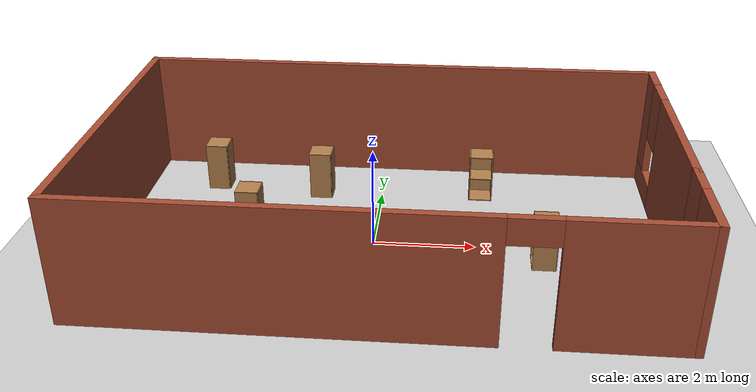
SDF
<sdf version="1.7">
 <world name="default">
  <light name="sun" type="directional">
   <pose>0 0 10 0 -0 0</pose>
   <diffuse>0.8 0.8 0.8 1</diffuse>
   <specular>0.2 0.2 0.2 1</specular>
   <attenuation>
    <range>1000</range>
    <constant>0.9</constant>
    <linear>0.01</linear>
    <quadratic>0.001</quadratic>
   </attenuation>
   <direction>-0.5 0.1 -0.9</direction>
   <spot><inner_angle>0</inner_angle><outer_angle>0</outer_angle><falloff>0</falloff></spot>
  </light>
  <model name="ground_plane">
   <static>1</static>
   <link name="link">
    <collision name="collision">
     <geometry><plane><normal>0 0 1</normal><size>100 100</size></plane></geometry>
     <surface><friction><ode><mu>100</mu><mu2>50</mu2></ode></friction></surface>
    </collision>
    <visual name="visual">
     <cast_shadows>0</cast_shadows>
     <geometry><plane><normal>0 0 1</normal><size>100 100</size></plane></geometry>
     <material>
      <script><uri>file://media/materials/scripts/gazebo.material</uri><name>Gazebo/Grey</name></script>
     </material>
    </visual>
   </link>
  </model>
  <gravity>0 0 -9.8</gravity>
  <magnetic_field>6e-06 2.3e-05 -4.2e-05</magnetic_field>
  <atmosphere type="adiabatic"/>
  <physics type="ode">
   <max_step_size>0.001</max_step_size>
   <real_time_factor>1</real_time_factor>
   <real_time_update_rate>1000</real_time_update_rate>
  </physics>
  <scene><ambient>0.4 0.4 0.4 1</ambient><background>0.7 0.7 0.7 1</background><shadows>1</shadows></scene>
  <audio><device>default</device></audio>
  <spherical_coordinates>
   <surface_model>EARTH_WGS84</surface_model>
   <latitude_deg>0</latitude_deg>
   <longitude_deg>0</longitude_deg>
   <elevation>0</elevation>
   <heading_deg>0</heading_deg>
  </spherical_coordinates>
  <model name="simple_room.world">
   <pose>0.255227 0.133001 0 0 -0 0</pose>
   <link name="Wall_2">
    <pose>0 -3.225 0 0 -0 0</pose>
    <visual name="Wall_2_Visual_0">
     <pose>-1.6767 0 1.25 0 -0 0</pose>
     <geometry><box><size>7.6466 0.15 2.5</size></box></geometry>
     <material>
      <script><uri>file://media/materials/scripts/gazebo.material</uri><name>Gazebo/Bricks</name></script>
      <ambient>1 1 1 1</ambient>
     </material>
     <meta><layer>0</layer></meta>
    </visual>
    <collision name="Wall_2_Collision_0">
     <geometry><box><size>7.6466 0.15 2.5</size></box></geometry>
     <pose>-1.6767 0 1.25 0 -0 0</pose>
    </collision>
    <visual name="Wall_2_Visual_1">
     <pose>4.2733 0 1.25 0 -0 0</pose>
     <geometry><box><size>2.4534 0.15 2.5</size></box></geometry>
     <material>
      <script><uri>file://media/materials/scripts/gazebo.material</uri><name>Gazebo/Bricks</name></script>
      <ambient>1 1 1 1</ambient>
     </material>
     <meta><layer>0</layer></meta>
    </visual>
    <collision name="Wall_2_Collision_1">
     <geometry><box><size>2.4534 0.15 2.5</size></box></geometry>
     <pose>4.2733 0 1.25 0 -0 0</pose>
    </collision>
    <visual name="Wall_2_Visual_2">
     <pose>2.5966 0 2.25 0 -0 0</pose>
     <geometry><box><size>0.9 0.15 0.5</size></box></geometry>
     <material>
      <script><uri>file://media/materials/scripts/gazebo.material</uri><name>Gazebo/Bricks</name></script>
      <ambient>1 1 1 1</ambient>
     </material>
     <meta><layer>0</layer></meta>
    </visual>
    <collision name="Wall_2_Collision_2">
     <geometry><box><size>0.9 0.15 0.5</size></box></geometry>
     <pose>2.5966 0 2.25 0 -0 0</pose>
    </collision>
   </link>
   <link name="Wall_3">
    <pose>5.425 -2.3 0 0 -0 1.5708</pose>
    <visual name="Wall_3_Visual_0">
     <pose>-0.373356 0 1.25 0 -0 0</pose>
     <geometry><box><size>1.25329 0.15 2.5</size></box></geometry>
     <material>
      <script><uri>file://media/materials/scripts/gazebo.material</uri><name>Gazebo/Bricks</name></script>
      <ambient>1 1 1 1</ambient>
     </material>
     <meta><layer>0</layer></meta>
    </visual>
    <collision name="Wall_3_Collision_0">
     <geometry><box><size>1.25329 0.15 2.5</size></box></geometry>
     <pose>-0.373356 0 1.25 0 -0 0</pose>
    </collision>
    <visual name="Wall_3_Visual_1">
     <pose>0.626644 0 0.25 0 -0 0</pose>
     <geometry><box><size>0.746713 0.15 0.5</size></box></geometry>
     <material>
      <script><uri>file://media/materials/scripts/gazebo.material</uri><name>Gazebo/Bricks</name></script>
      <ambient>1 1 1 1</ambient>
     </material>
     <meta><layer>0</layer></meta>
    </visual>
    <collision name="Wall_3_Collision_1">
     <geometry><box><size>0.746713 0.15 0.5</size></box></geometry>
     <pose>0.626644 0 0.25 0 -0 0</pose>
    </collision>
    <visual name="Wall_3_Visual_2">
     <pose>0.626644 0 1.9 0 -0 0</pose>
     <geometry><box><size>0.746713 0.15 1.2</size></box></geometry>
     <material>
      <script><uri>file://media/materials/scripts/gazebo.material</uri><name>Gazebo/Bricks</name></script>
      <ambient>1 1 1 1</ambient>
     </material>
     <meta><layer>0</layer></meta>
    </visual>
    <collision name="Wall_3_Collision_2">
     <geometry><box><size>0.746713 0.15 1.2</size></box></geometry>
     <pose>0.626644 0 1.9 0 -0 0</pose>
    </collision>
   </link>
   <link name="Wall_4">
    <pose>5.425 0.925 0 0 -0 1.5708</pose>
    <visual name="Wall_4_Visual_0">
     <pose>-0.784742 0 1.25 0 -0 0</pose>
     <geometry><box><size>3.18052 0.15 2.5</size></box></geometry>
     <material>
      <script><uri>file://media/materials/scripts/gazebo.material</uri><name>Gazebo/Bricks</name></script>
      <ambient>1 1 1 1</ambient>
     </material>
     <meta><layer>0</layer></meta>
    </visual>
    <collision name="Wall_4_Collision_0">
     <geometry><box><size>3.18052 0.15 2.5</size></box></geometry>
     <pose>-0.784742 0 1.25 0 -0 0</pose>
    </collision>
    <visual name="Wall_4_Visual_1">
     <pose>1.59026 0 0.25 0 -0 0</pose>
     <geometry><box><size>1.56949 0.15 0.5</size></box></geometry>
     <material>
      <script><uri>file://media/materials/scripts/gazebo.material</uri><name>Gazebo/Bricks</name></script>
      <ambient>1 1 1 1</ambient>
     </material>
     <meta><layer>0</layer></meta>
    </visual>
    <collision name="Wall_4_Collision_1">
     <geometry><box><size>1.56949 0.15 0.5</size></box></geometry>
     <pose>1.59026 0 0.25 0 -0 0</pose>
    </collision>
    <visual name="Wall_4_Visual_2">
     <pose>1.99026 0 1.5 0 -0 0</pose>
     <geometry><box><size>0.769485 0.15 2</size></box></geometry>
     <material>
      <script><uri>file://media/materials/scripts/gazebo.material</uri><name>Gazebo/Bricks</name></script>
      <ambient>1 1 1 1</ambient>
     </material>
     <meta><layer>0</layer></meta>
    </visual>
    <collision name="Wall_4_Collision_2">
     <geometry><box><size>0.769485 0.15 2</size></box></geometry>
     <pose>1.99026 0 1.5 0 -0 0</pose>
    </collision>
    <visual name="Wall_4_Visual_3">
     <pose>1.20551 0 1.9 0 -0 0</pose>
     <geometry><box><size>0.8 0.15 1.2</size></box></geometry>
     <material>
      <script><uri>file://media/materials/scripts/gazebo.material</uri><name>Gazebo/Bricks</name></script>
      <ambient>1 1 1 1</ambient>
     </material>
     <meta><layer>0</layer></meta>
    </visual>
    <collision name="Wall_4_Collision_3">
     <geometry><box><size>0.8 0.15 1.2</size></box></geometry>
     <pose>1.20551 0 1.9 0 -0 0</pose>
    </collision>
   </link>
   <link name="Wall_5">
    <collision name="Wall_5_Collision">
     <geometry><box><size>11 0.15 2.5</size></box></geometry>
     <pose>0 0 1.25 0 -0 0</pose>
    </collision>
    <visual name="Wall_5_Visual">
     <pose>0 0 1.25 0 -0 0</pose>
     <geometry><box><size>11 0.15 2.5</size></box></geometry>
     <material>
      <script><uri>file://media/materials/scripts/gazebo.material</uri><name>Gazebo/Bricks</name></script>
      <ambient>1 1 1 1</ambient>
     </material>
     <meta><layer>0</layer></meta>
    </visual>
    <pose>0 3.225 0 0 -0 3.14159</pose>
   </link>
   <link name="Wall_6">
    <collision name="Wall_6_Collision">
     <geometry><box><size>6.5 0.15 2.5</size></box></geometry>
     <pose>0 0 1.25 0 -0 0</pose>
    </collision>
    <visual name="Wall_6_Visual">
     <pose>0 0 1.25 0 -0 0</pose>
     <geometry><box><size>6.5 0.15 2.5</size></box></geometry>
     <material>
      <script><uri>file://media/materials/scripts/gazebo.material</uri><name>Gazebo/Bricks</name></script>
      <ambient>1 1 1 1</ambient>
     </material>
     <meta><layer>0</layer></meta>
    </visual>
    <pose>-5.425 0.05 0 0 -0 -1.5708</pose>
   </link>
   <static>1</static>
  </model>
  <model name="cabinet">
   <static>1</static>
   <link name="cabinet_bottom_plate">
    <inertial>
     <pose>0 0 -1 0 -0 0</pose>
     <inertia><ixx>2.05</ixx><ixy>0</ixy><ixz>0</ixz><iyy>2.05</iyy><iyz>0</iyz><izz>2.05</izz></inertia>
     <mass>25</mass>
    </inertial>
    <collision name="cabinet_bottom_plate_geom">
     <pose>0 0 0.01 0 -0 0</pose>
     <geometry><box><size>0.45 0.45 0.02</size></box></geometry>
    </collision>
    <visual name="cabinet_bottom_plate_geom_visual">
     <pose>0 0 0.01 0 -0 0</pose>
     <geometry><box><size>0.45 0.45 0.02</size></box></geometry>
     <material>
      <script><uri>file://media/materials/scripts/gazebo.material</uri><name>Gazebo/Wood</name></script>
     </material>
    </visual>
    <collision name="cabinet_bottom_plate_geom_cabinet_back_plate">
     <pose>0.235 0 0.51 0 -0 0</pose>
     <geometry><box><size>0.02 0.45 1.02</size></box></geometry>
    </collision>
    <visual name="cabinet_bottom_plate_geom_cabinet_back_plate_visual">
     <pose>0.235 0 0.51 0 -0 0</pose>
     <geometry><box><size>0.02 0.45 1.02</size></box></geometry>
     <material>
      <script><uri>file://media/materials/scripts/gazebo.material</uri><name>Gazebo/Wood</name></script>
     </material>
    </visual>
    <collision name="cabinet_bottom_plate_geom_cabinet_left_plate">
     <pose>0 0.235 0.51 0 -0 0</pose>
     <geometry><box><size>0.45 0.02 1.02</size></box></geometry>
    </collision>
    <visual name="cabinet_bottom_plate_geom_cabinet_left_plate_visual">
     <pose>0 0.235 0.51 0 -0 0</pose>
     <geometry><box><size>0.45 0.02 1.02</size></box></geometry>
     <material>
      <script><uri>file://media/materials/scripts/gazebo.material</uri><name>Gazebo/Wood</name></script>
     </material>
    </visual>
    <collision name="cabinet_bottom_plate_geom_cabinet_middle_plate">
     <pose>0 0 0.51 0 -0 0</pose>
     <geometry><box><size>0.45 0.45 0.02</size></box></geometry>
    </collision>
    <visual name="cabinet_bottom_plate_geom_cabinet_middle_plate_visual">
     <pose>0 0 0.51 0 -0 0</pose>
     <geometry><box><size>0.45 0.45 0.02</size></box></geometry>
     <material>
      <script><uri>file://media/materials/scripts/gazebo.material</uri><name>Gazebo/Wood</name></script>
     </material>
    </visual>
    <collision name="cabinet_bottom_plate_geom_cabinet_right_plate">
     <pose>0 -0.235 0.51 0 -0 0</pose>
     <geometry><box><size>0.45 0.02 1.02</size></box></geometry>
    </collision>
    <visual name="cabinet_bottom_plate_geom_cabinet_right_plate_visual">
     <pose>0 -0.235 0.51 0 -0 0</pose>
     <geometry><box><size>0.45 0.02 1.02</size></box></geometry>
     <material>
      <script><uri>file://media/materials/scripts/gazebo.material</uri><name>Gazebo/Wood</name></script>
     </material>
    </visual>
    <collision name="cabinet_bottom_plate_geom_cabinet_top_plate">
     <pose>0 0 1.01 0 -0 0</pose>
     <geometry><box><size>0.45 0.45 0.02</size></box></geometry>
    </collision>
    <visual name="cabinet_bottom_plate_geom_cabinet_top_plate_visual">
     <pose>0 0 1.01 0 -0 0</pose>
     <geometry><box><size>0.45 0.45 0.02</size></box></geometry>
     <material>
      <script><uri>file://media/materials/scripts/gazebo.material</uri><name>Gazebo/Wood</name></script>
     </material>
    </visual>
   </link>
   <pose>-3.60416 2.24564 0 0 -0 0</pose>
  </model>
  <model name="cabinet_0">
   <static>1</static>
   <link name="cabinet_bottom_plate">
    <inertial>
     <pose>0 0 -1 0 -0 0</pose>
     <inertia><ixx>2.05</ixx><ixy>0</ixy><ixz>0</ixz><iyy>2.05</iyy><iyz>0</iyz><izz>2.05</izz></inertia>
     <mass>25</mass>
    </inertial>
    <collision name="cabinet_bottom_plate_geom">
     <pose>0 0 0.01 0 -0 0</pose>
     <geometry><box><size>0.45 0.45 0.02</size></box></geometry>
    </collision>
    <visual name="cabinet_bottom_plate_geom_visual">
     <pose>0 0 0.01 0 -0 0</pose>
     <geometry><box><size>0.45 0.45 0.02</size></box></geometry>
     <material>
      <script><uri>file://media/materials/scripts/gazebo.material</uri><name>Gazebo/Wood</name></script>
     </material>
    </visual>
    <collision name="cabinet_bottom_plate_geom_cabinet_back_plate">
     <pose>0.235 0 0.51 0 -0 0</pose>
     <geometry><box><size>0.02 0.45 1.02</size></box></geometry>
    </collision>
    <visual name="cabinet_bottom_plate_geom_cabinet_back_plate_visual">
     <pose>0.235 0 0.51 0 -0 0</pose>
     <geometry><box><size>0.02 0.45 1.02</size></box></geometry>
     <material>
      <script><uri>file://media/materials/scripts/gazebo.material</uri><name>Gazebo/Wood</name></script>
     </material>
    </visual>
    <collision name="cabinet_bottom_plate_geom_cabinet_left_plate">
     <pose>0 0.235 0.51 0 -0 0</pose>
     <geometry><box><size>0.45 0.02 1.02</size></box></geometry>
    </collision>
    <visual name="cabinet_bottom_plate_geom_cabinet_left_plate_visual">
     <pose>0 0.235 0.51 0 -0 0</pose>
     <geometry><box><size>0.45 0.02 1.02</size></box></geometry>
     <material>
      <script><uri>file://media/materials/scripts/gazebo.material</uri><name>Gazebo/Wood</name></script>
     </material>
    </visual>
    <collision name="cabinet_bottom_plate_geom_cabinet_middle_plate">
     <pose>0 0 0.51 0 -0 0</pose>
     <geometry><box><size>0.45 0.45 0.02</size></box></geometry>
    </collision>
    <visual name="cabinet_bottom_plate_geom_cabinet_middle_plate_visual">
     <pose>0 0 0.51 0 -0 0</pose>
     <geometry><box><size>0.45 0.45 0.02</size></box></geometry>
     <material>
      <script><uri>file://media/materials/scripts/gazebo.material</uri><name>Gazebo/Wood</name></script>
     </material>
    </visual>
    <collision name="cabinet_bottom_plate_geom_cabinet_right_plate">
     <pose>0 -0.235 0.51 0 -0 0</pose>
     <geometry><box><size>0.45 0.02 1.02</size></box></geometry>
    </collision>
    <visual name="cabinet_bottom_plate_geom_cabinet_right_plate_visual">
     <pose>0 -0.235 0.51 0 -0 0</pose>
     <geometry><box><size>0.45 0.02 1.02</size></box></geometry>
     <material>
      <script><uri>file://media/materials/scripts/gazebo.material</uri><name>Gazebo/Wood</name></script>
     </material>
    </visual>
    <collision name="cabinet_bottom_plate_geom_cabinet_top_plate">
     <pose>0 0 1.01 0 -0 0</pose>
     <geometry><box><size>0.45 0.45 0.02</size></box></geometry>
    </collision>
    <visual name="cabinet_bottom_plate_geom_cabinet_top_plate_visual">
     <pose>0 0 1.01 0 -0 0</pose>
     <geometry><box><size>0.45 0.45 0.02</size></box></geometry>
     <material>
      <script><uri>file://media/materials/scripts/gazebo.material</uri><name>Gazebo/Wood</name></script>
     </material>
    </visual>
   </link>
   <pose>2.11531 2.15076 0 0 -0 1.5754</pose>
  </model>
  <model name="cabinet_1">
   <static>1</static>
   <link name="cabinet_bottom_plate">
    <inertial>
     <pose>0 0 -1 0 -0 0</pose>
     <inertia><ixx>2.05</ixx><ixy>0</ixy><ixz>0</ixz><iyy>2.05</iyy><iyz>0</iyz><izz>2.05</izz></inertia>
     <mass>25</mass>
    </inertial>
    <collision name="cabinet_bottom_plate_geom">
     <pose>0 0 0.01 0 -0 0</pose>
     <geometry><box><size>0.45 0.45 0.02</size></box></geometry>
    </collision>
    <visual name="cabinet_bottom_plate_geom_visual">
     <pose>0 0 0.01 0 -0 0</pose>
     <geometry><box><size>0.45 0.45 0.02</size></box></geometry>
     <material>
      <script><uri>file://media/materials/scripts/gazebo.material</uri><name>Gazebo/Wood</name></script>
     </material>
    </visual>
    <collision name="cabinet_bottom_plate_geom_cabinet_back_plate">
     <pose>0.235 0 0.51 0 -0 0</pose>
     <geometry><box><size>0.02 0.45 1.02</size></box></geometry>
    </collision>
    <visual name="cabinet_bottom_plate_geom_cabinet_back_plate_visual">
     <pose>0.235 0 0.51 0 -0 0</pose>
     <geometry><box><size>0.02 0.45 1.02</size></box></geometry>
     <material>
      <script><uri>file://media/materials/scripts/gazebo.material</uri><name>Gazebo/Wood</name></script>
     </material>
    </visual>
    <collision name="cabinet_bottom_plate_geom_cabinet_left_plate">
     <pose>0 0.235 0.51 0 -0 0</pose>
     <geometry><box><size>0.45 0.02 1.02</size></box></geometry>
    </collision>
    <visual name="cabinet_bottom_plate_geom_cabinet_left_plate_visual">
     <pose>0 0.235 0.51 0 -0 0</pose>
     <geometry><box><size>0.45 0.02 1.02</size></box></geometry>
     <material>
      <script><uri>file://media/materials/scripts/gazebo.material</uri><name>Gazebo/Wood</name></script>
     </material>
    </visual>
    <collision name="cabinet_bottom_plate_geom_cabinet_middle_plate">
     <pose>0 0 0.51 0 -0 0</pose>
     <geometry><box><size>0.45 0.45 0.02</size></box></geometry>
    </collision>
    <visual name="cabinet_bottom_plate_geom_cabinet_middle_plate_visual">
     <pose>0 0 0.51 0 -0 0</pose>
     <geometry><box><size>0.45 0.45 0.02</size></box></geometry>
     <material>
      <script><uri>file://media/materials/scripts/gazebo.material</uri><name>Gazebo/Wood</name></script>
     </material>
    </visual>
    <collision name="cabinet_bottom_plate_geom_cabinet_right_plate">
     <pose>0 -0.235 0.51 0 -0 0</pose>
     <geometry><box><size>0.45 0.02 1.02</size></box></geometry>
    </collision>
    <visual name="cabinet_bottom_plate_geom_cabinet_right_plate_visual">
     <pose>0 -0.235 0.51 0 -0 0</pose>
     <geometry><box><size>0.45 0.02 1.02</size></box></geometry>
     <material>
      <script><uri>file://media/materials/scripts/gazebo.material</uri><name>Gazebo/Wood</name></script>
     </material>
    </visual>
    <collision name="cabinet_bottom_plate_geom_cabinet_top_plate">
     <pose>0 0 1.01 0 -0 0</pose>
     <geometry><box><size>0.45 0.45 0.02</size></box></geometry>
    </collision>
    <visual name="cabinet_bottom_plate_geom_cabinet_top_plate_visual">
     <pose>0 0 1.01 0 -0 0</pose>
     <geometry><box><size>0.45 0.45 0.02</size></box></geometry>
     <material>
      <script><uri>file://media/materials/scripts/gazebo.material</uri><name>Gazebo/Wood</name></script>
     </material>
    </visual>
   </link>
   <pose>-0.303318 -1.67063 0 0 -0 0</pose>
  </model>
  <model name="cabinet_2">
   <static>1</static>
   <link name="cabinet_bottom_plate">
    <inertial>
     <pose>0 0 -1 0 -0 0</pose>
     <inertia><ixx>2.05</ixx><ixy>0</ixy><ixz>0</ixz><iyy>2.05</iyy><iyz>0</iyz><izz>2.05</izz></inertia>
     <mass>25</mass>
    </inertial>
    <collision name="cabinet_bottom_plate_geom">
     <pose>0 0 0.01 0 -0 0</pose>
     <geometry><box><size>0.45 0.45 0.02</size></box></geometry>
    </collision>
    <visual name="cabinet_bottom_plate_geom_visual">
     <pose>0 0 0.01 0 -0 0</pose>
     <geometry><box><size>0.45 0.45 0.02</size></box></geometry>
     <material>
      <script><uri>file://media/materials/scripts/gazebo.material</uri><name>Gazebo/Wood</name></script>
     </material>
    </visual>
    <collision name="cabinet_bottom_plate_geom_cabinet_back_plate">
     <pose>0.235 0 0.51 0 -0 0</pose>
     <geometry><box><size>0.02 0.45 1.02</size></box></geometry>
    </collision>
    <visual name="cabinet_bottom_plate_geom_cabinet_back_plate_visual">
     <pose>0.235 0 0.51 0 -0 0</pose>
     <geometry><box><size>0.02 0.45 1.02</size></box></geometry>
     <material>
      <script><uri>file://media/materials/scripts/gazebo.material</uri><name>Gazebo/Wood</name></script>
     </material>
    </visual>
    <collision name="cabinet_bottom_plate_geom_cabinet_left_plate">
     <pose>0 0.235 0.51 0 -0 0</pose>
     <geometry><box><size>0.45 0.02 1.02</size></box></geometry>
    </collision>
    <visual name="cabinet_bottom_plate_geom_cabinet_left_plate_visual">
     <pose>0 0.235 0.51 0 -0 0</pose>
     <geometry><box><size>0.45 0.02 1.02</size></box></geometry>
     <material>
      <script><uri>file://media/materials/scripts/gazebo.material</uri><name>Gazebo/Wood</name></script>
     </material>
    </visual>
    <collision name="cabinet_bottom_plate_geom_cabinet_middle_plate">
     <pose>0 0 0.51 0 -0 0</pose>
     <geometry><box><size>0.45 0.45 0.02</size></box></geometry>
    </collision>
    <visual name="cabinet_bottom_plate_geom_cabinet_middle_plate_visual">
     <pose>0 0 0.51 0 -0 0</pose>
     <geometry><box><size>0.45 0.45 0.02</size></box></geometry>
     <material>
      <script><uri>file://media/materials/scripts/gazebo.material</uri><name>Gazebo/Wood</name></script>
     </material>
    </visual>
    <collision name="cabinet_bottom_plate_geom_cabinet_right_plate">
     <pose>0 -0.235 0.51 0 -0 0</pose>
     <geometry><box><size>0.45 0.02 1.02</size></box></geometry>
    </collision>
    <visual name="cabinet_bottom_plate_geom_cabinet_right_plate_visual">
     <pose>0 -0.235 0.51 0 -0 0</pose>
     <geometry><box><size>0.45 0.02 1.02</size></box></geometry>
     <material>
      <script><uri>file://media/materials/scripts/gazebo.material</uri><name>Gazebo/Wood</name></script>
     </material>
    </visual>
    <collision name="cabinet_bottom_plate_geom_cabinet_top_plate">
     <pose>0 0 1.01 0 -0 0</pose>
     <geometry><box><size>0.45 0.45 0.02</size></box></geometry>
    </collision>
    <visual name="cabinet_bottom_plate_geom_cabinet_top_plate_visual">
     <pose>0 0 1.01 0 -0 0</pose>
     <geometry><box><size>0.45 0.45 0.02</size></box></geometry>
     <material>
      <script><uri>file://media/materials/scripts/gazebo.material</uri><name>Gazebo/Wood</name></script>
     </material>
    </visual>
   </link>
   <pose>3.3075 -0.49941 0 0 -0 0</pose>
  </model>
  <model name="cabinet_3">
   <static>1</static>
   <link name="cabinet_bottom_plate">
    <inertial>
     <pose>0 0 -1 0 -0 0</pose>
     <inertia><ixx>2.05</ixx><ixy>0</ixy><ixz>0</ixz><iyy>2.05</iyy><iyz>0</iyz><izz>2.05</izz></inertia>
     <mass>25</mass>
    </inertial>
    <collision name="cabinet_bottom_plate_geom">
     <pose>0 0 0.01 0 -0 0</pose>
     <geometry><box><size>0.45 0.45 0.02</size></box></geometry>
    </collision>
    <visual name="cabinet_bottom_plate_geom_visual">
     <pose>0 0 0.01 0 -0 0</pose>
     <geometry><box><size>0.45 0.45 0.02</size></box></geometry>
     <material>
      <script><uri>file://media/materials/scripts/gazebo.material</uri><name>Gazebo/Wood</name></script>
     </material>
    </visual>
    <collision name="cabinet_bottom_plate_geom_cabinet_back_plate">
     <pose>0.235 0 0.51 0 -0 0</pose>
     <geometry><box><size>0.02 0.45 1.02</size></box></geometry>
    </collision>
    <visual name="cabinet_bottom_plate_geom_cabinet_back_plate_visual">
     <pose>0.235 0 0.51 0 -0 0</pose>
     <geometry><box><size>0.02 0.45 1.02</size></box></geometry>
     <material>
      <script><uri>file://media/materials/scripts/gazebo.material</uri><name>Gazebo/Wood</name></script>
     </material>
    </visual>
    <collision name="cabinet_bottom_plate_geom_cabinet_left_plate">
     <pose>0 0.235 0.51 0 -0 0</pose>
     <geometry><box><size>0.45 0.02 1.02</size></box></geometry>
    </collision>
    <visual name="cabinet_bottom_plate_geom_cabinet_left_plate_visual">
     <pose>0 0.235 0.51 0 -0 0</pose>
     <geometry><box><size>0.45 0.02 1.02</size></box></geometry>
     <material>
      <script><uri>file://media/materials/scripts/gazebo.material</uri><name>Gazebo/Wood</name></script>
     </material>
    </visual>
    <collision name="cabinet_bottom_plate_geom_cabinet_middle_plate">
     <pose>0 0 0.51 0 -0 0</pose>
     <geometry><box><size>0.45 0.45 0.02</size></box></geometry>
    </collision>
    <visual name="cabinet_bottom_plate_geom_cabinet_middle_plate_visual">
     <pose>0 0 0.51 0 -0 0</pose>
     <geometry><box><size>0.45 0.45 0.02</size></box></geometry>
     <material>
      <script><uri>file://media/materials/scripts/gazebo.material</uri><name>Gazebo/Wood</name></script>
     </material>
    </visual>
    <collision name="cabinet_bottom_plate_geom_cabinet_right_plate">
     <pose>0 -0.235 0.51 0 -0 0</pose>
     <geometry><box><size>0.45 0.02 1.02</size></box></geometry>
    </collision>
    <visual name="cabinet_bottom_plate_geom_cabinet_right_plate_visual">
     <pose>0 -0.235 0.51 0 -0 0</pose>
     <geometry><box><size>0.45 0.02 1.02</size></box></geometry>
     <material>
      <script><uri>file://media/materials/scripts/gazebo.material</uri><name>Gazebo/Wood</name></script>
     </material>
    </visual>
    <collision name="cabinet_bottom_plate_geom_cabinet_top_plate">
     <pose>0 0 1.01 0 -0 0</pose>
     <geometry><box><size>0.45 0.45 0.02</size></box></geometry>
    </collision>
    <visual name="cabinet_bottom_plate_geom_cabinet_top_plate_visual">
     <pose>0 0 1.01 0 -0 0</pose>
     <geometry><box><size>0.45 0.45 0.02</size></box></geometry>
     <material>
      <script><uri>file://media/materials/scripts/gazebo.material</uri><name>Gazebo/Wood</name></script>
     </material>
    </visual>
   </link>
   <pose>-3.73117 -1.15865 0 0 -0 0</pose>
  </model>
  <model name="cabinet_4">
   <static>1</static>
   <link name="cabinet_bottom_plate">
    <inertial>
     <pose>0 0 -1 0 -0 0</pose>
     <inertia><ixx>2.05</ixx><ixy>0</ixy><ixz>0</ixz><iyy>2.05</iyy><iyz>0</iyz><izz>2.05</izz></inertia>
     <mass>25</mass>
    </inertial>
    <collision name="cabinet_bottom_plate_geom">
     <pose>0 0 0.01 0 -0 0</pose>
     <geometry><box><size>0.45 0.45 0.02</size></box></geometry>
    </collision>
    <visual name="cabinet_bottom_plate_geom_visual">
     <pose>0 0 0.01 0 -0 0</pose>
     <geometry><box><size>0.45 0.45 0.02</size></box></geometry>
     <material>
      <script><uri>file://media/materials/scripts/gazebo.material</uri><name>Gazebo/Wood</name></script>
     </material>
    </visual>
    <collision name="cabinet_bottom_plate_geom_cabinet_back_plate">
     <pose>0.235 0 0.51 0 -0 0</pose>
     <geometry><box><size>0.02 0.45 1.02</size></box></geometry>
    </collision>
    <visual name="cabinet_bottom_plate_geom_cabinet_back_plate_visual">
     <pose>0.235 0 0.51 0 -0 0</pose>
     <geometry><box><size>0.02 0.45 1.02</size></box></geometry>
     <material>
      <script><uri>file://media/materials/scripts/gazebo.material</uri><name>Gazebo/Wood</name></script>
     </material>
    </visual>
    <collision name="cabinet_bottom_plate_geom_cabinet_left_plate">
     <pose>0 0.235 0.51 0 -0 0</pose>
     <geometry><box><size>0.45 0.02 1.02</size></box></geometry>
    </collision>
    <visual name="cabinet_bottom_plate_geom_cabinet_left_plate_visual">
     <pose>0 0.235 0.51 0 -0 0</pose>
     <geometry><box><size>0.45 0.02 1.02</size></box></geometry>
     <material>
      <script><uri>file://media/materials/scripts/gazebo.material</uri><name>Gazebo/Wood</name></script>
     </material>
    </visual>
    <collision name="cabinet_bottom_plate_geom_cabinet_middle_plate">
     <pose>0 0 0.51 0 -0 0</pose>
     <geometry><box><size>0.45 0.45 0.02</size></box></geometry>
    </collision>
    <visual name="cabinet_bottom_plate_geom_cabinet_middle_plate_visual">
     <pose>0 0 0.51 0 -0 0</pose>
     <geometry><box><size>0.45 0.45 0.02</size></box></geometry>
     <material>
      <script><uri>file://media/materials/scripts/gazebo.material</uri><name>Gazebo/Wood</name></script>
     </material>
    </visual>
    <collision name="cabinet_bottom_plate_geom_cabinet_right_plate">
     <pose>0 -0.235 0.51 0 -0 0</pose>
     <geometry><box><size>0.45 0.02 1.02</size></box></geometry>
    </collision>
    <visual name="cabinet_bottom_plate_geom_cabinet_right_plate_visual">
     <pose>0 -0.235 0.51 0 -0 0</pose>
     <geometry><box><size>0.45 0.02 1.02</size></box></geometry>
     <material>
      <script><uri>file://media/materials/scripts/gazebo.material</uri><name>Gazebo/Wood</name></script>
     </material>
    </visual>
    <collision name="cabinet_bottom_plate_geom_cabinet_top_plate">
     <pose>0 0 1.01 0 -0 0</pose>
     <geometry><box><size>0.45 0.45 0.02</size></box></geometry>
    </collision>
    <visual name="cabinet_bottom_plate_geom_cabinet_top_plate_visual">
     <pose>0 0 1.01 0 -0 0</pose>
     <geometry><box><size>0.45 0.45 0.02</size></box></geometry>
     <material>
      <script><uri>file://media/materials/scripts/gazebo.material</uri><name>Gazebo/Wood</name></script>
     </material>
    </visual>
   </link>
   <pose>-1.31254 2.01943 0 0 -0 0</pose>
  </model>
  <model name="cabinet_5">
   <static>1</static>
   <link name="cabinet_bottom_plate">
    <inertial>
     <pose>0 0 -1 0 -0 0</pose>
     <inertia><ixx>2.05</ixx><ixy>0</ixy><ixz>0</ixz><iyy>2.05</iyy><iyz>0</iyz><izz>2.05</izz></inertia>
     <mass>25</mass>
    </inertial>
    <collision name="cabinet_bottom_plate_geom">
     <pose>0 0 0.01 0 -0 0</pose>
     <geometry><box><size>0.45 0.45 0.02</size></box></geometry>
    </collision>
    <visual name="cabinet_bottom_plate_geom_visual">
     <pose>0 0 0.01 0 -0 0</pose>
     <geometry><box><size>0.45 0.45 0.02</size></box></geometry>
     <material>
      <script><uri>file://media/materials/scripts/gazebo.material</uri><name>Gazebo/Wood</name></script>
     </material>
    </visual>
    <collision name="cabinet_bottom_plate_geom_cabinet_back_plate">
     <pose>0.235 0 0.51 0 -0 0</pose>
     <geometry><box><size>0.02 0.45 1.02</size></box></geometry>
    </collision>
    <visual name="cabinet_bottom_plate_geom_cabinet_back_plate_visual">
     <pose>0.235 0 0.51 0 -0 0</pose>
     <geometry><box><size>0.02 0.45 1.02</size></box></geometry>
     <material>
      <script><uri>file://media/materials/scripts/gazebo.material</uri><name>Gazebo/Wood</name></script>
     </material>
    </visual>
    <collision name="cabinet_bottom_plate_geom_cabinet_left_plate">
     <pose>0 0.235 0.51 0 -0 0</pose>
     <geometry><box><size>0.45 0.02 1.02</size></box></geometry>
    </collision>
    <visual name="cabinet_bottom_plate_geom_cabinet_left_plate_visual">
     <pose>0 0.235 0.51 0 -0 0</pose>
     <geometry><box><size>0.45 0.02 1.02</size></box></geometry>
     <material>
      <script><uri>file://media/materials/scripts/gazebo.material</uri><name>Gazebo/Wood</name></script>
     </material>
    </visual>
    <collision name="cabinet_bottom_plate_geom_cabinet_middle_plate">
     <pose>0 0 0.51 0 -0 0</pose>
     <geometry><box><size>0.45 0.45 0.02</size></box></geometry>
    </collision>
    <visual name="cabinet_bottom_plate_geom_cabinet_middle_plate_visual">
     <pose>0 0 0.51 0 -0 0</pose>
     <geometry><box><size>0.45 0.45 0.02</size></box></geometry>
     <material>
      <script><uri>file://media/materials/scripts/gazebo.material</uri><name>Gazebo/Wood</name></script>
     </material>
    </visual>
    <collision name="cabinet_bottom_plate_geom_cabinet_right_plate">
     <pose>0 -0.235 0.51 0 -0 0</pose>
     <geometry><box><size>0.45 0.02 1.02</size></box></geometry>
    </collision>
    <visual name="cabinet_bottom_plate_geom_cabinet_right_plate_visual">
     <pose>0 -0.235 0.51 0 -0 0</pose>
     <geometry><box><size>0.45 0.02 1.02</size></box></geometry>
     <material>
      <script><uri>file://media/materials/scripts/gazebo.material</uri><name>Gazebo/Wood</name></script>
     </material>
    </visual>
    <collision name="cabinet_bottom_plate_geom_cabinet_top_plate">
     <pose>0 0 1.01 0 -0 0</pose>
     <geometry><box><size>0.45 0.45 0.02</size></box></geometry>
    </collision>
    <visual name="cabinet_bottom_plate_geom_cabinet_top_plate_visual">
     <pose>0 0 1.01 0 -0 0</pose>
     <geometry><box><size>0.45 0.45 0.02</size></box></geometry>
     <material>
      <script><uri>file://media/materials/scripts/gazebo.material</uri><name>Gazebo/Wood</name></script>
     </material>
    </visual>
   </link>
   <pose>2.18257 -2.20454 0 0 -0 0</pose>
  </model>
  <model name="cabinet_6">
   <static>1</static>
   <link name="cabinet_bottom_plate">
    <inertial>
     <pose>0 0 -1 0 -0 0</pose>
     <inertia><ixx>2.05</ixx><ixy>0</ixy><ixz>0</ixz><iyy>2.05</iyy><iyz>0</iyz><izz>2.05</izz></inertia>
     <mass>25</mass>
    </inertial>
    <collision name="cabinet_bottom_plate_geom">
     <pose>0 0 0.01 0 -0 0</pose>
     <geometry><box><size>0.45 0.45 0.02</size></box></geometry>
    </collision>
    <visual name="cabinet_bottom_plate_geom_visual">
     <pose>0 0 0.01 0 -0 0</pose>
     <geometry><box><size>0.45 0.45 0.02</size></box></geometry>
     <material>
      <script><uri>file://media/materials/scripts/gazebo.material</uri><name>Gazebo/Wood</name></script>
     </material>
    </visual>
    <collision name="cabinet_bottom_plate_geom_cabinet_back_plate">
     <pose>0.235 0 0.51 0 -0 0</pose>
     <geometry><box><size>0.02 0.45 1.02</size></box></geometry>
    </collision>
    <visual name="cabinet_bottom_plate_geom_cabinet_back_plate_visual">
     <pose>0.235 0 0.51 0 -0 0</pose>
     <geometry><box><size>0.02 0.45 1.02</size></box></geometry>
     <material>
      <script><uri>file://media/materials/scripts/gazebo.material</uri><name>Gazebo/Wood</name></script>
     </material>
    </visual>
    <collision name="cabinet_bottom_plate_geom_cabinet_left_plate">
     <pose>0 0.235 0.51 0 -0 0</pose>
     <geometry><box><size>0.45 0.02 1.02</size></box></geometry>
    </collision>
    <visual name="cabinet_bottom_plate_geom_cabinet_left_plate_visual">
     <pose>0 0.235 0.51 0 -0 0</pose>
     <geometry><box><size>0.45 0.02 1.02</size></box></geometry>
     <material>
      <script><uri>file://media/materials/scripts/gazebo.material</uri><name>Gazebo/Wood</name></script>
     </material>
    </visual>
    <collision name="cabinet_bottom_plate_geom_cabinet_middle_plate">
     <pose>0 0 0.51 0 -0 0</pose>
     <geometry><box><size>0.45 0.45 0.02</size></box></geometry>
    </collision>
    <visual name="cabinet_bottom_plate_geom_cabinet_middle_plate_visual">
     <pose>0 0 0.51 0 -0 0</pose>
     <geometry><box><size>0.45 0.45 0.02</size></box></geometry>
     <material>
      <script><uri>file://media/materials/scripts/gazebo.material</uri><name>Gazebo/Wood</name></script>
     </material>
    </visual>
    <collision name="cabinet_bottom_plate_geom_cabinet_right_plate">
     <pose>0 -0.235 0.51 0 -0 0</pose>
     <geometry><box><size>0.45 0.02 1.02</size></box></geometry>
    </collision>
    <visual name="cabinet_bottom_plate_geom_cabinet_right_plate_visual">
     <pose>0 -0.235 0.51 0 -0 0</pose>
     <geometry><box><size>0.45 0.02 1.02</size></box></geometry>
     <material>
      <script><uri>file://media/materials/scripts/gazebo.material</uri><name>Gazebo/Wood</name></script>
     </material>
    </visual>
    <collision name="cabinet_bottom_plate_geom_cabinet_top_plate">
     <pose>0 0 1.01 0 -0 0</pose>
     <geometry><box><size>0.45 0.45 0.02</size></box></geometry>
    </collision>
    <visual name="cabinet_bottom_plate_geom_cabinet_top_plate_visual">
     <pose>0 0 1.01 0 -0 0</pose>
     <geometry><box><size>0.45 0.45 0.02</size></box></geometry>
     <material>
      <script><uri>file://media/materials/scripts/gazebo.material</uri><name>Gazebo/Wood</name></script>
     </material>
    </visual>
   </link>
   <pose>-2.51352 0.235892 0 0 -0 0</pose>
  </model>
 </world>
</sdf>
